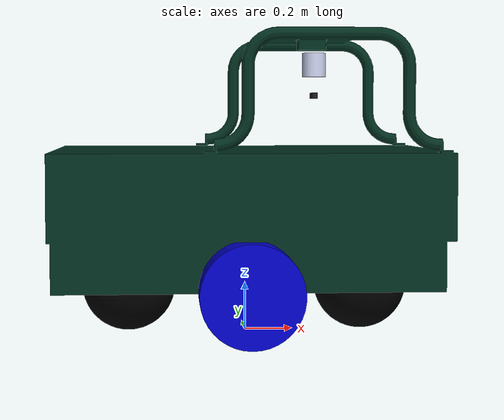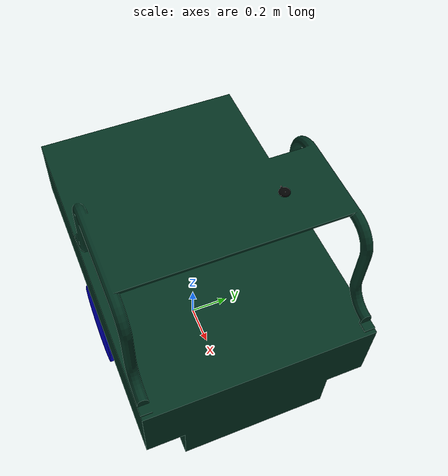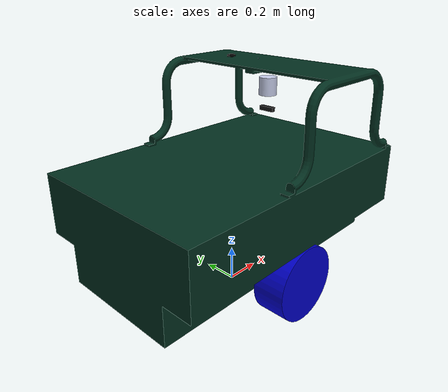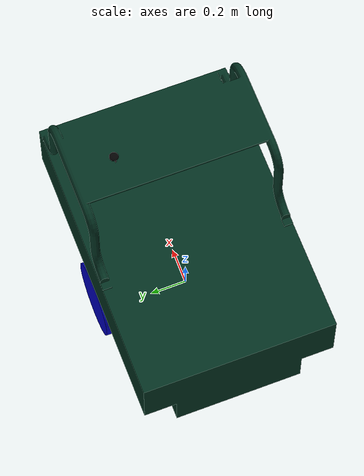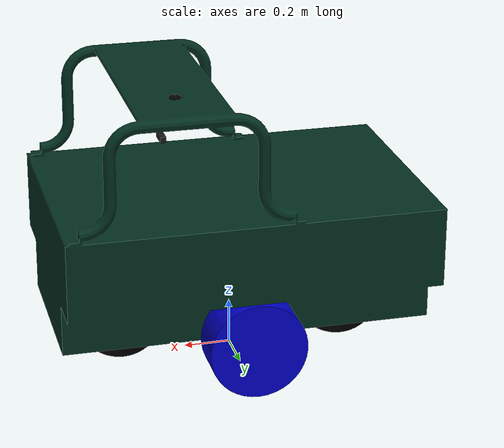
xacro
<?xml version="1.0" encoding="utf-8"?>
<robot
  name="dagger">
  <link
    name="base_footprint">
  </link>
  <link
    name="base_link">
    <inertial>
      <origin
        xyz="0.00417810739786946 1.84015288908762E-05 0.317906779406128"
        rpy="0 0 0" />
      <mass
        value="350" />
      <inertia
        ixx="87.7967404450403"
        ixy="-5.83318921551471E-15"
        ixz="2.02613597224398E-15"
        iyy="194.475250616029"
        iyz="3.79348008128481E-15"
        izz="240.635741105177" />
    </inertial>
    <visual>
      <origin
        xyz="0 0 0"
        rpy="0 0 0" />
      <geometry>
        <mesh
          filename="package://dagger_description/meshes/base_link.STL" />
      </geometry>
      <material name="dark_green"/>
    </visual>
    <collision>
      <origin
        xyz="0 0 0"
        rpy="0 0 0" />
      <geometry>
        <mesh
          filename="package://dagger_description/meshes/base_link.STL" />
      </geometry>
    </collision>
  </link>
  <joint
    name="base_joint"
    type="fixed">
    <origin
      xyz="0 0 0.2"
      rpy="0 0 0" />
    <parent
      link="base_footprint" />
    <child
      link="base_link" />
    <axis
      xyz="0 0 0" />
  </joint>
  <link
    name="wheel_right_link">
    <inertial>
      <origin
        xyz="5.39608156543105E-18 5.55111512312578E-17 -2.77555756156289E-17"
        rpy="0 0 0" />
      <mass
        value="24.3477357644026" />
      <inertia
        ixx="0.327819436065402"
        ixy="1.33212305643843E-34"
        ixz="3.4694469519536E-18"
        iyy="0.52416109900303"
        iyz="1.15808597949261E-33"
        izz="0.327819436065402" />
    </inertial>
    <visual>
      <origin
        xyz="0 0 0"
        rpy="0 0 0" />
      <geometry>
        <mesh
          filename="package://dagger_description/meshes/wheel_right_link.STL" />
      </geometry>
      <material name="blue"/>
    </visual>
    <collision>
      <origin
        xyz="0 0 0"
        rpy="0 0 0" />
      <geometry>
        <mesh
          filename="package://dagger_description/meshes/wheel_right_link.STL" />
      </geometry>
    </collision>
  </link>
  <joint
    name="wheel_right_joint"
    type="continuous">
    <origin
      xyz="0 -0.4425 0.00750000000000001"
      rpy="0 0 0" />
    <parent
      link="base_link" />
    <child
      link="wheel_right_link" />
    <axis
      xyz="0 1 0" />
    <limit
      lower="-3.14"
      upper="3.14"
      effort="200"
      velocity="5" />
    <dynamics
      damping="0.1"
      friction="0.1" />
  </joint>
  <link
    name="wheel_left_link">
    <inertial>
      <origin
        xyz="5.39608156543105E-18 5.55111512312578E-17 -2.77555756156289E-17"
        rpy="0 0 0" />
      <mass
        value="24.3477357644026" />
      <inertia
        ixx="0.327819436065402"
        ixy="1.33212305643843E-34"
        ixz="3.4694469519536E-18"
        iyy="0.52416109900303"
        iyz="1.15808597949261E-33"
        izz="0.327819436065402" />
    </inertial>
    <visual>
      <origin
        xyz="0 0 0"
        rpy="0 0 0" />
      <geometry>
        <mesh
          filename="package://dagger_description/meshes/wheel_left_link.STL" />
      </geometry>
      <material name="blue"/>
    </visual>
    <collision>
      <origin
        xyz="0 0 0"
        rpy="0 0 0" />
      <geometry>
        <mesh
          filename="package://dagger_description/meshes/wheel_left_link.STL" />
      </geometry>
    </collision>
  </link>
  <joint
    name="wheel_left_joint"
    type="continuous">
    <origin
      xyz="0 0.4425 0.0075"
      rpy="0 0 0" />
    <parent
      link="base_link" />
    <child
      link="wheel_left_link" />
    <axis
      xyz="0 1 0" />
    <limit
      lower="-3.14"
      upper="3.14"
      effort="200"
      velocity="5" />
    <dynamics
      damping="0.1"
      friction="0.1" />
  </joint>
  <link
    name="caster_front_link">
    <inertial>
      <origin
        xyz="0 0 -0.073125"
        rpy="0 0 0" />
      <mass
        value="15.5296778848578" />
      <inertia
        ixx="0.153165087907664"
        ixy="0"
        ixz="-2.13909350644554E-17"
        iyy="0.153165087907664"
        iyz="0"
        izz="0.236206400628687" />
    </inertial>
    <visual>
      <origin
        xyz="0 0 0"
        rpy="0 0 0" />
      <geometry>
        <mesh
          filename="package://dagger_description/meshes/caster_front_link.STL" />
      </geometry>
      <material name="black"/>
    </visual>
    <collision>
      <origin
        xyz="0 0 0"
        rpy="0 0 0" />
      <geometry>
        <mesh
          filename="package://dagger_description/meshes/caster_front_link.STL" />
      </geometry>
    </collision>
  </link>
  <joint
    name="caster_front_joint"
    type="fixed">
    <origin
      xyz="0.49 0 0"
      rpy="0 0 0" />
    <parent
      link="base_link" />
    <child
      link="caster_front_link" />
    <axis
      xyz="0 0 0" />
  </joint>
  <link
    name="caster_rear_link">
    <inertial>
      <origin
        xyz="0 0 -0.073125"
        rpy="0 0 0" />
      <mass
        value="15.5296778848578" />
      <inertia
        ixx="0.153165087907664"
        ixy="0"
        ixz="-2.13909350644554E-17"
        iyy="0.153165087907664"
        iyz="0"
        izz="0.236206400628687" />
    </inertial>
    <visual>
      <origin
        xyz="0 0 0"
        rpy="0 0 0" />
      <geometry>
        <mesh
          filename="package://dagger_description/meshes/caster_rear_link.STL" />
      </geometry>
      <material name="black"/>
    </visual>
    <collision>
      <origin
        xyz="0 0 0"
        rpy="0 0 0" />
      <geometry>
        <mesh
          filename="package://dagger_description/meshes/caster_rear_link.STL" />
      </geometry>
    </collision>
  </link>
  <joint
    name="caster_rear_joint"
    type="fixed">
    <origin
      xyz="-0.49 0 0"
      rpy="0 0 0" />
    <parent
      link="base_link" />
    <child
      link="caster_rear_link" />
    <axis
      xyz="0 0 0" />
  </joint>
  <link
    name="lidar_link">
    <inertial>
      <origin
        xyz="0 9.7454E-19 0"
        rpy="0 0 0" />
      <mass
        value="0.7854" />
      <inertia
        ixx="0.0011454"
        ixy="0"
        ixz="-3.7944E-36"
        iyy="0.0011454"
        iyz="0"
        izz="0.00098175" />
    </inertial>
    <visual>
      <origin
        xyz="0 0 0"
        rpy="0 0 0" />
      <geometry>
        <mesh
          filename="package://dagger_description/meshes/lidar_link.STL" />
      </geometry>
      <material
        name="">
        <color
          rgba="0.79216 0.81961 0.93333 1" />
      </material>
    </visual>
    <collision>
      <origin
        xyz="0 0 0"
        rpy="0 0 0" />
      <geometry>
        <mesh
          filename="package://dagger_description/meshes/lidar_link.STL" />
      </geometry>
    </collision>
  </link>
  <joint
    name="lidar_joint"
    type="fixed">
    <origin
      xyz="0.2925 0 0.92"
      rpy="0 0 1.5708" />
    <parent
      link="base_link" />
    <child
      link="lidar_link" />
    <axis
      xyz="0 0 0" />
  </joint>
  <link name="d435_link">
    <visual>
      <origin xyz="0 0 0" rpy="0 0 0" />
      <geometry>
        <box size="0.025 0.090 0.025" />
      </geometry>
      <material name="">
        <color rgba="0.1 0.1 0.1 1" />
      </material>
    </visual>
  </link>
  <joint
    name="d435_joint"
    type="fixed">
    <origin
      xyz="0.2925 0 0.79"
      rpy="3.14159265 0 0" />
    <parent
      link="base_link" />
    <child
      link="d435_link" />
    <axis
      xyz="0 0 0" />
  </joint>
  <link
    name="imu_link">
    <inertial>
      <origin
        xyz="-0.288401897132272 -0.0899652710999505 -0.700987527267135"
        rpy="0 0 0" />
      <mass
        value="0.6" />
      <inertia
        ixx="112.314308647017"
        ixy="-0.0091908384336655"
        ixz="-2.51515536234909"
        iyy="218.390043334098"
        iyz="-0.023414235361229"
        izz="259.848252964611" />
    </inertial>
    <visual>
      <origin
        xyz="0 0 0"
        rpy="0 0 0" />
      <geometry>
        <mesh
          filename="package://dagger_description/meshes/imu_link.STL" />
      </geometry>
      <material
        name="">
        <color
          rgba="0.792156862745098 0.819607843137255 0.933333333333333 1" />
      </material>
    </visual>
    <collision>
      <origin
        xyz="0 0 0"
        rpy="0 0 0" />
      <geometry>
        <mesh
          filename="package://dagger_description/meshes/imu_link.STL" />
      </geometry>
    </collision>
  </link>
  <joint
    name="imu_joint"
    type="fixed">
    <origin
      xyz="0.2925 0.09 0.99"
      rpy="0 0 0" />
    <parent
      link="base_link" />
    <child
      link="imu_link" />
    <axis
      xyz="0 0 0" />
  </joint>
  <link
    name="gps_link">
    <inertial>
      <origin
        xyz="-0.000595423068436685 -3.50461574316618E-06 0.00725304206893806"
        rpy="0 0 0" />
      <mass
        value="0.0229899972559036" />
      <inertia
        ixx="3.2560030570289E-06"
        ixy="-6.51330544813795E-12"
        ixz="-1.27591041693873E-08"
        iyy="3.65451604081092E-06"
        iyz="8.72058094475673E-12"
        izz="6.30283181954583E-06" />
    </inertial>
    <visual>
      <origin
        xyz="0 0 0"
        rpy="0 0 0" />
      <geometry>
        <mesh
          filename="package://dagger_description/meshes/gps_link.STL" />
      </geometry>
      <material name="black"/>
    </visual>
    <collision>
      <origin
        xyz="0 0 0"
        rpy="0 0 0" />
      <geometry>
        <mesh
          filename="package://dagger_description/meshes/gps_link.STL" />
      </geometry>
    </collision>
  </link>
  <joint
    name="gps_joint"
    type="fixed">
    <origin
      xyz="0.2925 0.28 1.05"
      rpy="0 0 0" />
    <parent
      link="base_link" />
    <child
      link="gps_link" />
    <axis
      xyz="0 0 0" />
  </joint>

  <material name="blue">
    <color rgba="0 0 0.8 1"/>
  </material>

  <material name="white">
    <color rgba="1 1 1 1"/>
  </material>

  <material name="black">
    <color rgba="0 0 0 1"/>
  </material>

  <material name="dark_green">
    <color rgba="0.012 0.188 0.125 1.0"/>
  </material>

</robot>
